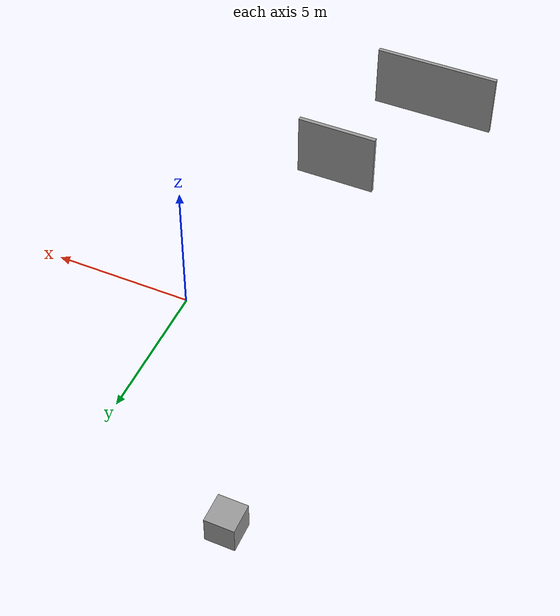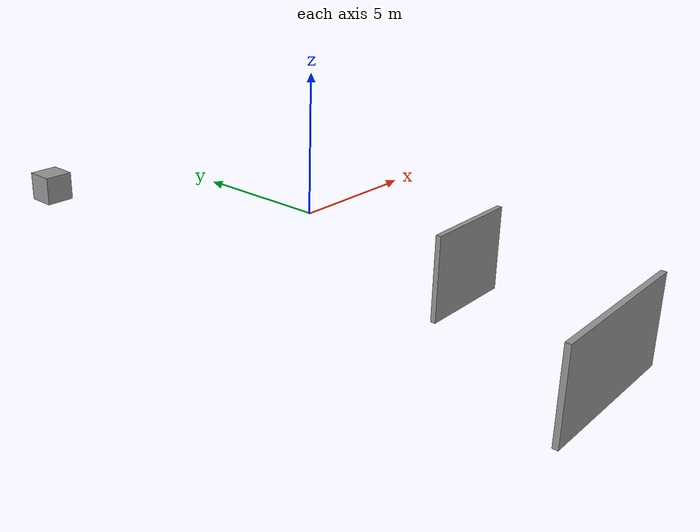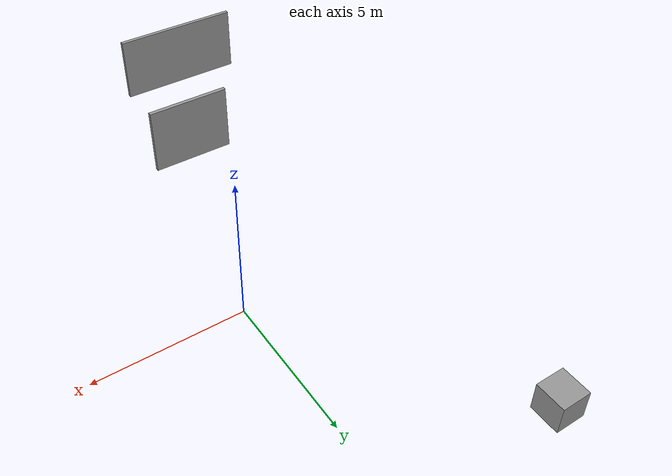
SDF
<sdf version="1.7">
 <world name="default">
  <light name="sun" type="directional">
   <pose>0 0 10 0 -0 0</pose>
   <diffuse>0.8 0.8 0.8 1</diffuse>
   <specular>0.2 0.2 0.2 1</specular>
   <attenuation>
    <range>1000</range>
    <constant>0.9</constant>
    <linear>0.01</linear>
    <quadratic>0.001</quadratic>
   </attenuation>
   <direction>-0.5 0.1 -0.9</direction>
   <spot><inner_angle>0</inner_angle><outer_angle>0</outer_angle><falloff>0</falloff></spot>
  </light>
  <gravity>0 0 -9.8</gravity>
  <magnetic_field>6e-06 2.3e-05 -4.2e-05</magnetic_field>
  <atmosphere type="adiabatic"/>
  <physics type="ode">
   <max_step_size>0.001</max_step_size>
   <real_time_factor>1</real_time_factor>
   <real_time_update_rate>1000</real_time_update_rate>
  </physics>
  <scene><ambient>0.4 0.4 0.4 1</ambient><background>0.7 0.7 0.7 1</background><shadows>1</shadows></scene>
  <spherical_coordinates>
   <surface_model>EARTH_WGS84</surface_model>
   <latitude_deg>0</latitude_deg>
   <longitude_deg>0</longitude_deg>
   <elevation>0</elevation>
   <heading_deg>0</heading_deg>
  </spherical_coordinates>
  <model name="wall3">
   <pose>-3.63581 -11.4325 0 0 -0 0</pose>
   <link name="Wall_4">
    <collision name="Wall_4_Collision">
     <geometry><box><size>4.75 0.15 2.5</size></box></geometry>
     <pose>0 0 1.25 0 -0 0</pose>
    </collision>
    <visual name="Wall_4_Visual">
     <pose>0 0 1.25 0 -0 0</pose>
     <geometry><box><size>4.75 0.15 2.5</size></box></geometry>
     <material>
      <script><uri>file://media/materials/scripts/gazebo.material</uri><name>Gazebo/Grey</name></script>
      <ambient>1 1 1 1</ambient>
     </material>
     <meta><layer>0</layer></meta>
    </visual>
    <pose>-0.7225 -1.4225 0 0 -0 3.14159</pose>
   </link>
   <static>1</static>
  </model>
  <model name="wall5">
   <pose>-1.63464 -5.99372 0 0 -0 0</pose>
   <link name="Wall_0">
    <collision name="Wall_0_Collision">
     <geometry><box><size>3 0.15 2.5</size></box></geometry>
     <pose>0 0 1.25 0 -0 0</pose>
    </collision>
    <visual name="Wall_0_Visual">
     <pose>0 0 1.25 0 -0 0</pose>
     <geometry><box><size>3 0.15 2.5</size></box></geometry>
     <material>
      <script><uri>file://media/materials/scripts/gazebo.material</uri><name>Gazebo/Grey</name></script>
      <ambient>1 1 1 1</ambient>
     </material>
     <meta><layer>0</layer></meta>
    </visual>
    <pose>-0.6775 -1.8075 0 0 -0 3.14159</pose>
   </link>
   <static>1</static>
  </model>
  <model name="Untitled">
   <link name="link_0">
    <inertial>
     <mass>1</mass>
     <inertia>
      <ixx>0.166667</ixx>
      <ixy>0</ixy>
      <ixz>0</ixz>
      <iyy>0.166667</iyy>
      <iyz>0</iyz>
      <izz>0.166667</izz>
     </inertia>
    </inertial>
    <visual name="visual">
     <geometry><box><size>1 1 1</size></box></geometry>
     <material>
      <lighting>1</lighting>
      <script><uri>file://media/materials/scripts/gazebo.material</uri><name>Gazebo/Grey</name></script>
      <shader type="pixel"><normal_map>__default__</normal_map></shader>
      <ambient>0.3 0.3 0.3 1</ambient>
      <diffuse>0.7 0.7 0.7 1</diffuse>
      <specular>0.01 0.01 0.01 1</specular>
      <emissive>0 0 0 1</emissive>
     </material>
    </visual>
    <collision name="collision">
     <geometry><box><size>1 1 1</size></box></geometry>
     <surface>
      <friction>
       <ode><mu>1</mu><mu2>1</mu2><fdir1>0 0 0</fdir1><slip1>0</slip1><slip2>0</slip2></ode>
       <torsional>
        <coefficient>1</coefficient>
        <patch_radius>0</patch_radius>
        <surface_radius>0</surface_radius>
        <use_patch_radius>1</use_patch_radius>
        <ode><slip>0</slip></ode>
       </torsional>
      </friction>
      <bounce><restitution_coefficient>0</restitution_coefficient><threshold>1e+06</threshold></bounce>
      <contact>
       <collide_without_contact>0</collide_without_contact>
       <collide_without_contact_bitmask>1</collide_without_contact_bitmask>
       <collide_bitmask>1</collide_bitmask>
       <ode>
        <soft_cfm>0</soft_cfm>
        <soft_erp>0.2</soft_erp>
        <kp>1e+13</kp>
        <kd>1</kd>
        <max_vel>0.01</max_vel>
        <min_depth>0</min_depth>
       </ode>
       <bullet>
        <split_impulse>1</split_impulse>
        <split_impulse_penetration_threshold>-0.01</split_impulse_penetration_threshold>
        <soft_cfm>0</soft_cfm>
        <soft_erp>0.2</soft_erp>
        <kp>1e+13</kp>
        <kd>1</kd>
       </bullet>
      </contact>
     </surface>
    </collision>
   </link>
   <static>0</static>
   <pose>-5.33316 7.86874 0.5 0 -0 0</pose>
  </model>
 </world>
</sdf>
